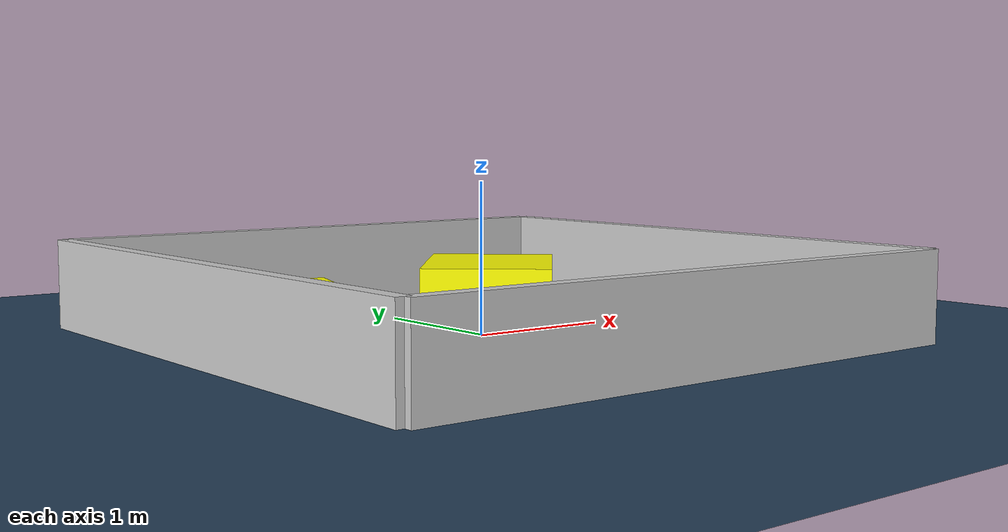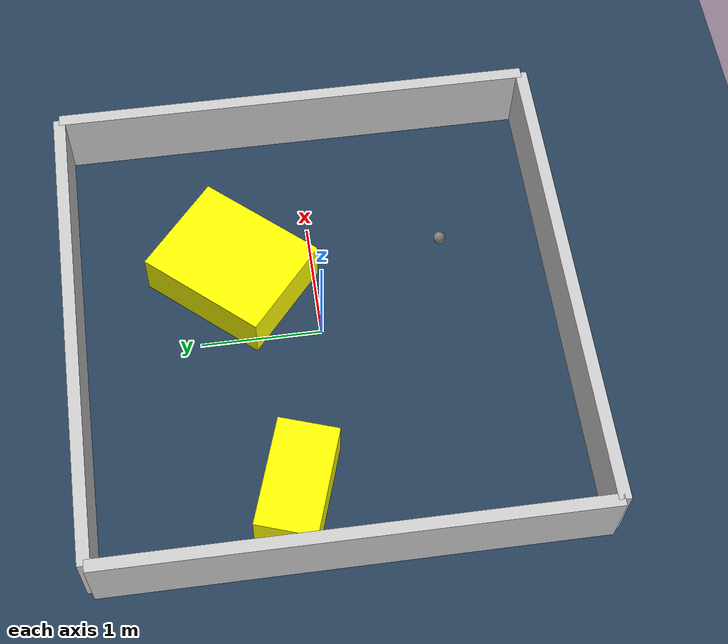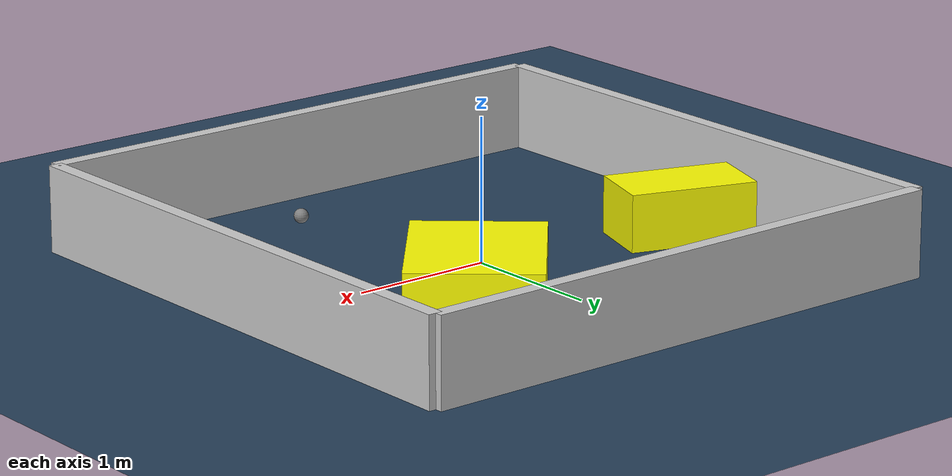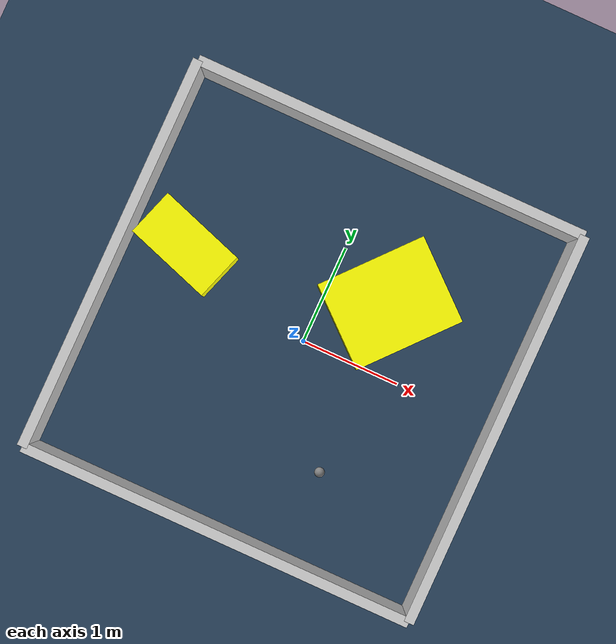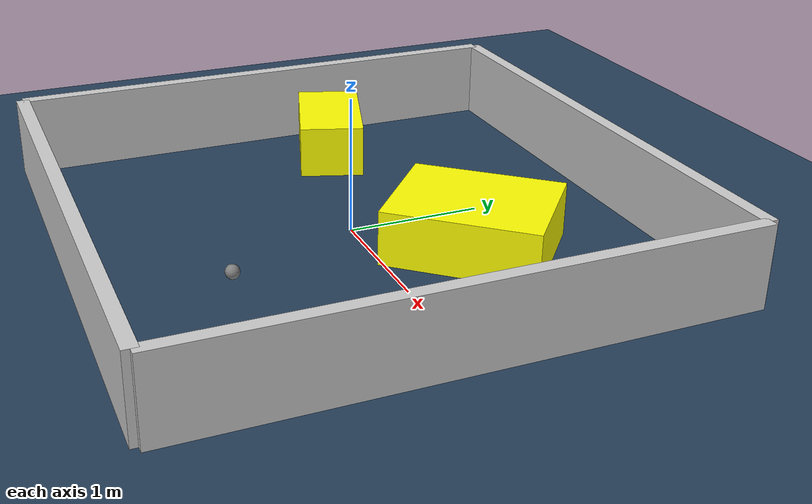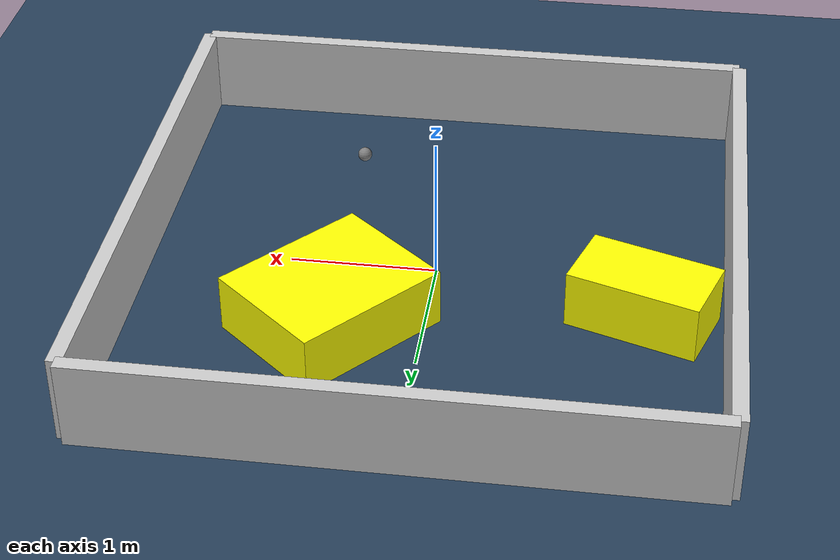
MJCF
<?xml version="1.0" ?>
<mujoco model="generated_environment">
  <option timestep="0.01" integrator="RK4" cone="elliptic"/>
  <default>
    <geom density="1"/>
  </default>
  <asset>
    <texture builtin="gradient" height="3072" rgb1="0.3 0.5 0.7" rgb2="0 0 0" type="skybox" width="512"/>
    <texture builtin="checker" height="300" mark="edge" markrgb="0.8 0.8 0.8" name="groundplane" rgb1="0.2 0.3 0.4" rgb2="0.1 0.2 0.3" type="2d" width="300"/>
    <material name="groundplane" reflectance="0.2" texrepeat="5 5" texture="groundplane" texuniform="true"/>
    <material name="robot" rgba="0.0 1.0 0.0 1"/>
  </asset>
  <worldbody>
    <light dir="0 0 -1" directional="true" pos="0 0 1.5"/>
    <geom condim="4" friction="1.0 0.005 0.001" material="groundplane" name="floor" size="0 0 0.05" type="plane"/>
    <body name="walls">
      <geom name="wall_1" condim="4" pos="-2.0 0.0 0.3" rgba="0.800000011920929 0.800000011920929 0.800000011920929 1.0" size="0.05 2.0 0.3" type="box"/>
      <geom name="wall_2" condim="4" pos="2.0 0.0 0.3" rgba="0.800000011920929 0.800000011920929 0.800000011920929 1.0" size="0.05 2.0 0.3" type="box"/>
      <geom name="wall_3" condim="4" pos="0.0 -2.0 0.3" rgba="0.800000011920929 0.800000011920929 0.800000011920929 1.0" size="2.0 0.05 0.3" type="box"/>
      <geom name="wall_4" condim="4" pos="0.0 2.0 0.3" rgba="0.800000011920929 0.800000011920929 0.800000011920929 1.0" size="2.0 0.05 0.3" type="box"/>
    </body>
    <body name="robot">
      <joint name="joint_x" type="slide" pos="0 0 0" axis="1 0 0"/>
      <joint name="joint_y" type="slide" pos="0 0 0" axis="0 1 0"/>
      <geom name="robot" type="sphere" pos="0.6655064340944148 -1.0853711268523387 0.2" size="0.05" mass="5." friction="1.0 0.005 0.0001" condim="4"/>
      <site name="sensor_ball"/>
    </body>
    <body name="obstacle_1_movable">
      <geom name="obstacle_1_movable" condim="4" pos="0.6011634632782357 0.6758260113967849 0.2" euler="0 0 48.97918899465158" friction="1.0 0.005 0.001" rgba="1 1 0 1" size="0.5565139560304788 0.448457464491389 0.2" type="box" mass="0.1"/>
      <joint type="free"/>
    </body>
    <body name="obstacle_2_movable">
      <geom name="obstacle_2_movable" condim="4" pos="-1.4147298430229418 0.37402376343652977 0.2" euler="0 0 251.4483818307062" friction="1.0 0.005 0.001" rgba="1 1 0 1" size="0.24948128096661357 0.4514814455465061 0.2" type="box" mass="0.1"/>
      <joint type="free"/>
    </body>
  </worldbody>
  <actuator>
    <motor name="actuator_x" joint="joint_x" gear="1" ctrlrange="-1 1"/>
    <motor name="actuator_y" joint="joint_y" gear="1" ctrlrange="-1 1"/>
  </actuator>
</mujoco>
